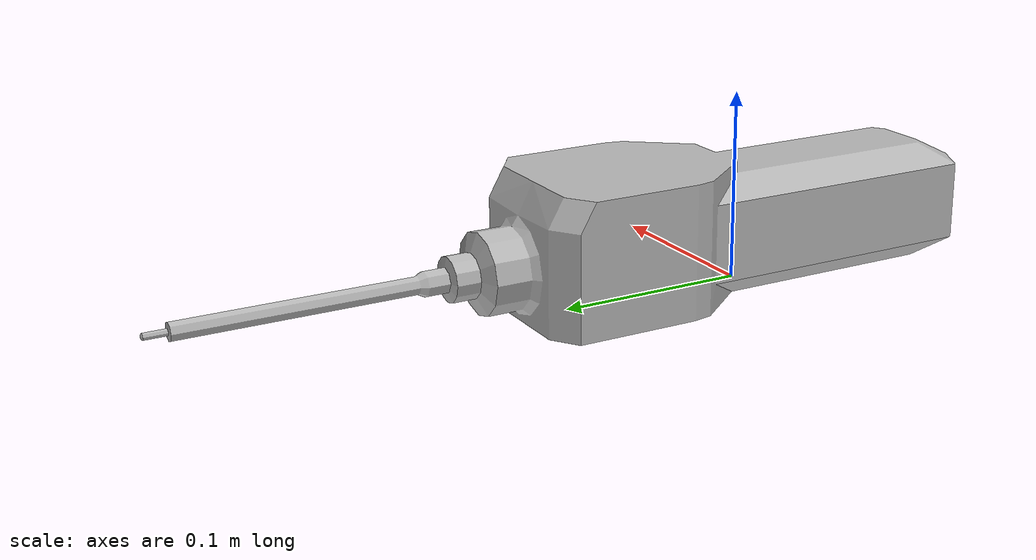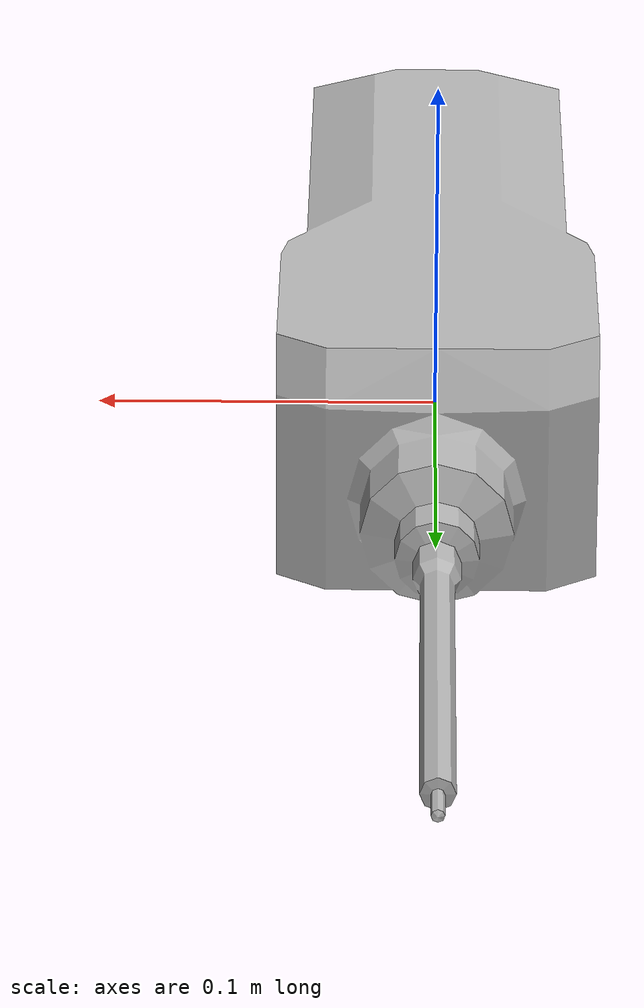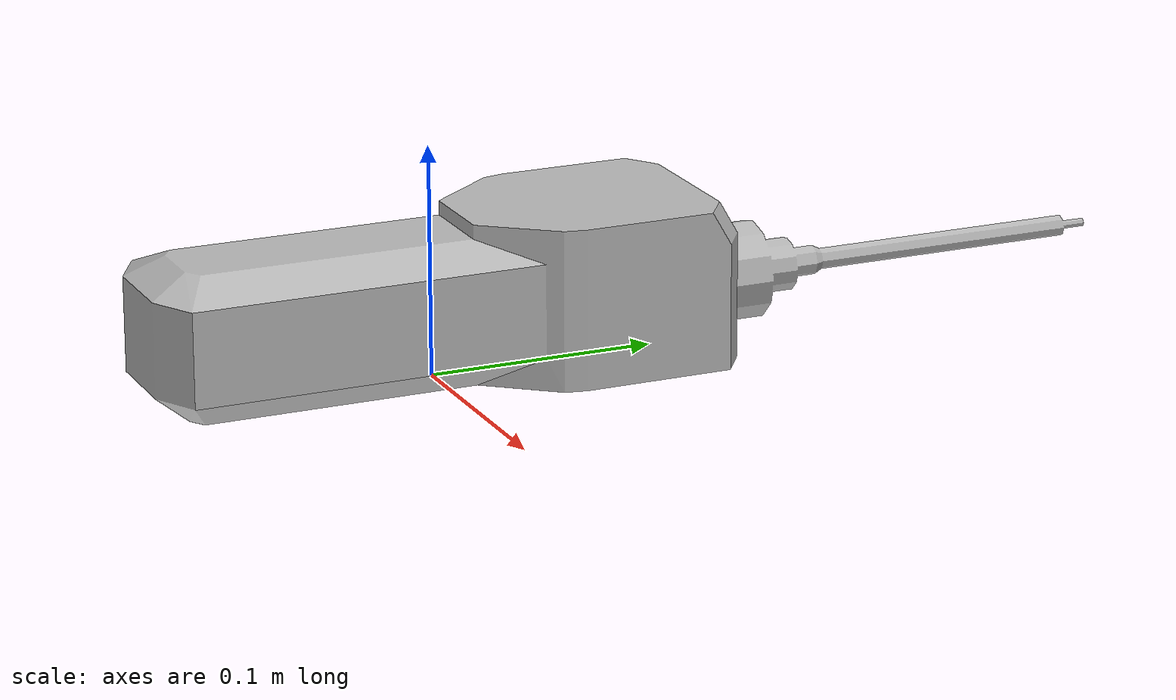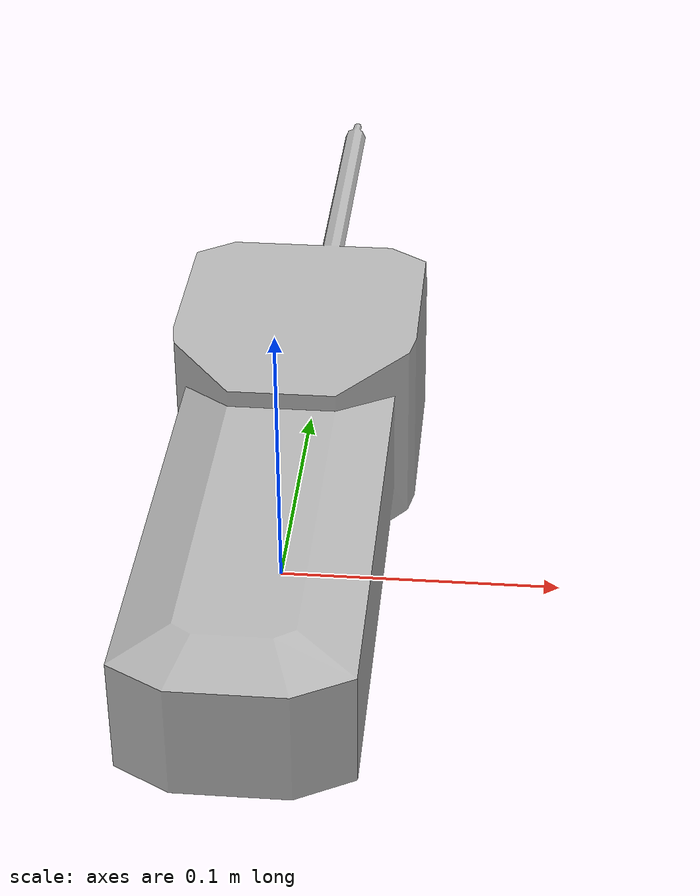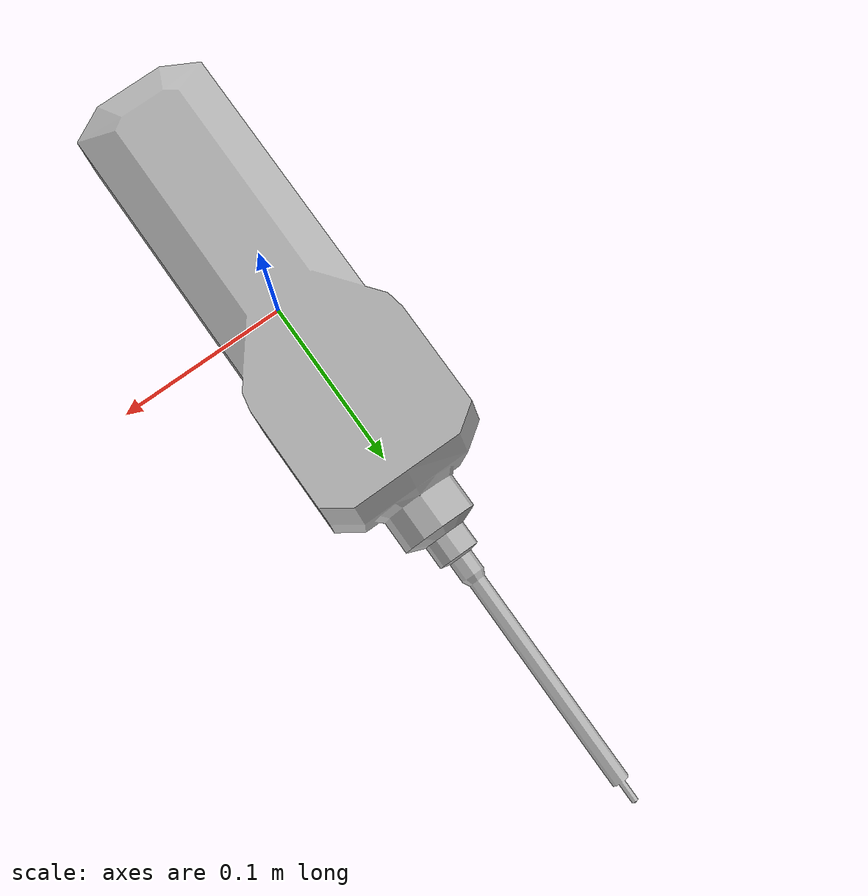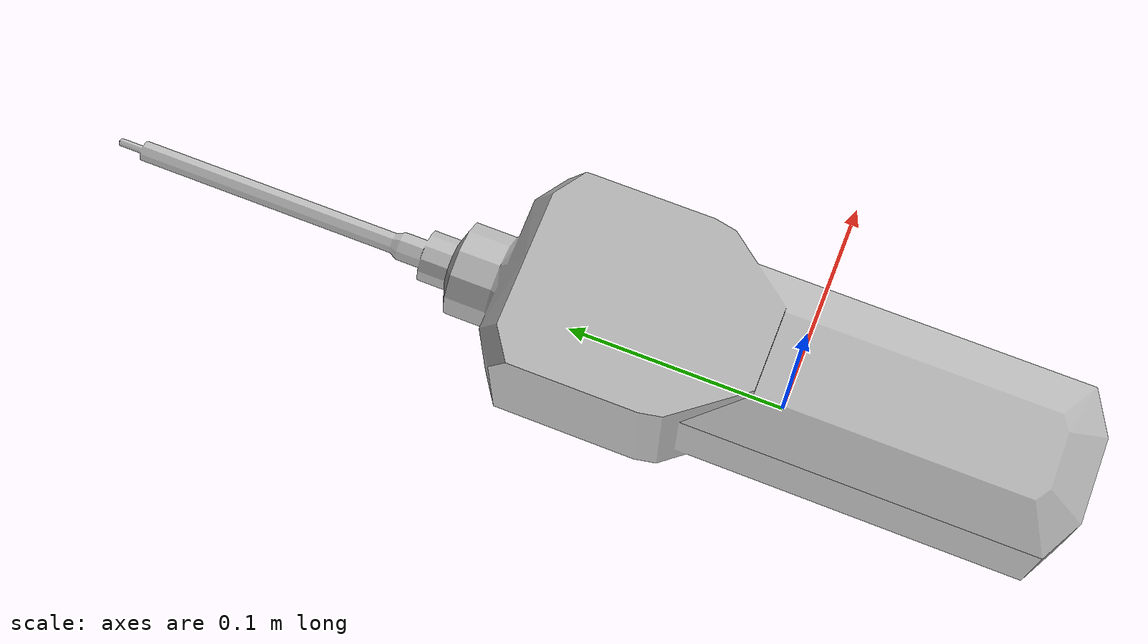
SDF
<?xml version="1.0" ?>
<sdf version="1.6">

  <model name="air_leak_detector">

    <link name="base">

      <inertial>
        <pose>
        0
        -0.0008
        0.03399
        0
        0
        0
        </pose>
        <inertia>
          <ixx>0.005172208333333333</ixx>
          <iyy>0.0009736016666666666</iyy>
          <izz>0.005377408333333333</izz>
        </inertia>
        <mass>1.0</mass>
      </inertial>

      <collision name="collision">
        <geometry>
          <mesh>
            <scale>0.0254 0.0254 0.0254</scale>
            <uri>model://air_leak_detector/meshes/air_leak_detector.obj</uri>
          </mesh>
        </geometry>
        <surface>
          <contact>
            <ode>
              <kp>1e5</kp>
              <kd>1</kd>
              <max_vel>0.1</max_vel>
              <min_depth>0.0015</min_depth>
            </ode>
          </contact>
        </surface>
      </collision>

      <visual name="visual">
        <geometry>
          <mesh>
            <scale>0.0254 0.0254 0.0254</scale>
            <uri>model://air_leak_detector/meshes/air_leak_detector.obj</uri>
          </mesh>
        </geometry>
      </visual>

    </link>

  </model>

</sdf>
